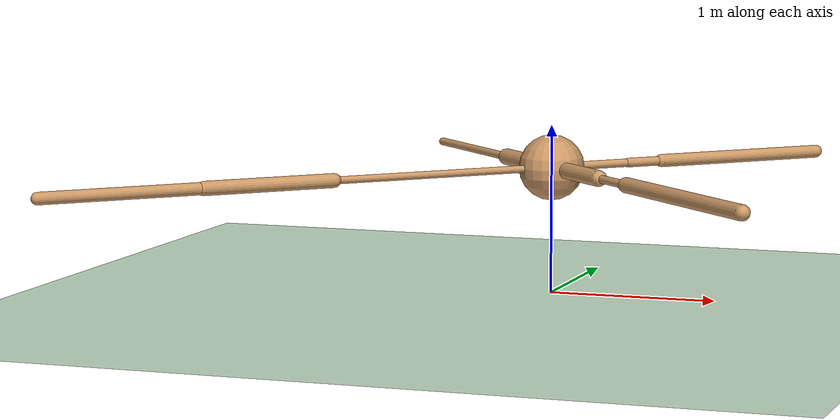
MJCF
<mujoco model="ant">
  <compiler angle="degree" coordinate="local" inertiafromgeom="true" />
  <option integrator="RK4" timestep="0.01" />
  <custom>
    <numeric data="0.0 0.0 0.55 1.0 0.0 0.0 0.0 0.0 1.0 0.0 -1.0 0.0 -1.0 0.0 1.0" name="init_qpos" />
  </custom>
  <default>
    <joint armature="1" damping="1" limited="true" />
    <geom conaffinity="0" condim="3" density="5.0" friction="1 0.5 0.5" margin="0.01" rgba="0.8 0.6 0.4 1" />
  </default>
  <asset>
    <texture builtin="gradient" height="100" rgb1="1 1 1" rgb2="0 0 0" type="skybox" width="100" />
    <texture builtin="flat" height="1278" mark="cross" markrgb="1 1 1" name="texgeom" random="0.01" rgb1="0.8 0.6 0.4" rgb2="0.8 0.6 0.4" type="cube" width="127" />
    <texture builtin="checker" height="100" name="texplane" rgb1="0 0 0" rgb2="0.8 0.8 0.8" type="2d" width="100" />
    <material name="MatPlane" reflectance="0.5" shininess="1" specular="1" texrepeat="60 60" texture="texplane" />
    <material name="geom" texture="texgeom" texuniform="true" />
  </asset>
  <worldbody>
    <light cutoff="100" diffuse="1 1 1" dir="-0 0 -1.3" directional="true" exponent="1" pos="0 0 1.3" specular=".1 .1 .1" />
    <geom conaffinity="1" condim="3" material="MatPlane" name="floor" pos="0 0 0" rgba="0.8 0.9 0.8 1" size="40 40 40" type="plane" />
    <body name="torso" pos="0 0 0.75">
      <camera name="track" mode="trackcom" pos="0 -11 5" xyaxes="1 0 0 0 0.5 1" />
      <geom name="torso_geom" pos="0 0 0" size="0.19428426027297974" type="sphere" />
      <joint armature="0" damping="0" limited="false" margin="0.01" name="root" pos="0 0 0" type="free" />
      <body name="front_left_leg" pos="0 0 0">
        <geom fromto="0 0 0 0.3661327660083771 0.3661327660083771 0" name="aux_1_geom" size="0.02422693371772766" type="capsule" />
        <body name="aux_1" pos="0.3661327660083771 0.3661327660083771 0">
          <joint axis="0 0 1" name="hip_1" pos="0.0 0.0 0.0" range="-30 30" type="hinge" />
          <geom fromto="0 0 0 0.16293269395828247 0.16293269395828247 0" name="left_leg_geom" size="0.027538800612092018" type="capsule" />
          <body name="left_leg_geom_aux" pos="0.16293269395828247 0.16293269395828247 0">
            <joint axis="-1 1 0" name="ankle_1" pos="0.0 0.0 0.0" range="30 70" type="hinge" />
            <geom fromto="0 0 0 0.7771778106689453 0.7771778106689453 0" name="left_ankle_geom" size="0.03829966112971306" type="capsule" />
          </body>
        </body>
      </body>
      <body name="front_right_leg" pos="0 0 0">
        <geom fromto="0 0 0 -0.20752231776714325 0.20752231776714325 0" name="aux_2_geom" size="0.023941028863191605" type="capsule" />
        <body name="aux_2" pos="-0.20752231776714325 0.20752231776714325 0">
          <joint axis="0 0 1" name="hip_2" pos="0.0 0.0 0.0" range="-30 30" type="hinge" />
          <geom fromto="0 0 0 -0.20771008729934692 0.20771008729934692 0" name="right_leg_geom" size="0.04933574050664902" type="capsule" />
          <body name="right_leg_geom_aux" pos="-0.20771008729934692 0.20771008729934692 0">
            <joint axis="1 1 0" name="ankle_2" pos="0.0 0.0 0.0" range="-70 -30" type="hinge" />
            <geom fromto="0 0 0 -0.6361826658248901 0.6361826658248901 0" name="right_ankle_geom" size="0.0231975968927145" type="capsule" />
          </body>
        </body>
      </body>
      <body name="back_leg" pos="0 0 0">
        <geom fromto="0 0 0 -0.9939607977867126 -0.9939607977867126 0" name="aux_3_geom" size="0.021524004638195038" type="capsule" />
        <body name="aux_3" pos="-0.9939607977867126 -0.9939607977867126 0">
          <joint axis="0 0 1" name="hip_3" pos="0.0 0.0 0.0" range="-30 30" type="hinge" />
          <geom fromto="0 0 0 -0.563793957233429 -0.563793957233429 0" name="back_leg_geom" size="0.041635721921920776" type="capsule" />
          <body name="back_leg_geom_aux" pos="-0.563793957233429 -0.563793957233429 0">
            <joint axis="-1 1 0" name="ankle_3" pos="0.0 0.0 0.0" range="-70 -30" type="hinge" />
            <geom fromto="0 0 0 -0.6849446892738342 -0.6849446892738342 0" name="third_ankle_geom" size="0.03601003810763359" type="capsule" />
          </body>
        </body>
      </body>
      <body name="right_back_leg" pos="0 0 0">
        <geom fromto="0 0 0 0.4103269577026367 -0.4103269577026367 0" name="aux_4_geom" size="0.047854356467723846" type="capsule" />
        <body name="aux_4" pos="0.4103269577026367 -0.4103269577026367 0">
          <joint axis="0 0 1" name="hip_4" pos="0.0 0.0 0.0" range="-30 30" type="hinge" />
          <geom fromto="0 0 0 0.22673824429512024 -0.22673824429512024 0" name="rightback_leg_geom" size="0.023744996637105942" type="capsule" />
          <body name="rightback_leg_geom_aux" pos="0.22673824429512024 -0.22673824429512024 0">
            <joint axis="1 1 0" name="ankle_4" pos="0.0 0.0 0.0" range="30 70" type="hinge" />
            <geom fromto="0 0 0 0.88735032081604 -0.88735032081604 0" name="fourth_ankle_geom" size="0.04483361542224884" type="capsule" />
          </body>
        </body>
      </body>
    </body>
  </worldbody>
  <actuator>
    <motor ctrllimited="true" ctrlrange="-1.0 1.0" joint="hip_4" gear="150" />
    <motor ctrllimited="true" ctrlrange="-1.0 1.0" joint="ankle_4" gear="150" />
    <motor ctrllimited="true" ctrlrange="-1.0 1.0" joint="hip_1" gear="150" />
    <motor ctrllimited="true" ctrlrange="-1.0 1.0" joint="ankle_1" gear="150" />
    <motor ctrllimited="true" ctrlrange="-1.0 1.0" joint="hip_2" gear="150" />
    <motor ctrllimited="true" ctrlrange="-1.0 1.0" joint="ankle_2" gear="150" />
    <motor ctrllimited="true" ctrlrange="-1.0 1.0" joint="hip_3" gear="150" />
    <motor ctrllimited="true" ctrlrange="-1.0 1.0" joint="ankle_3" gear="150" />
  </actuator>
</mujoco>
